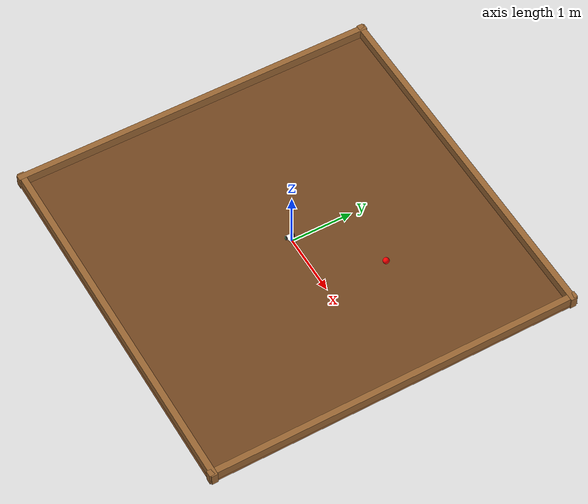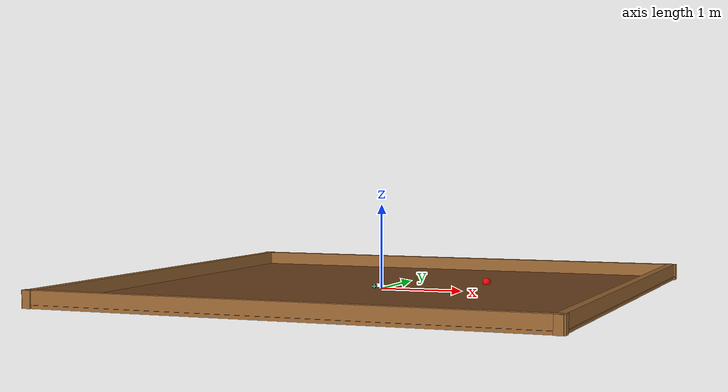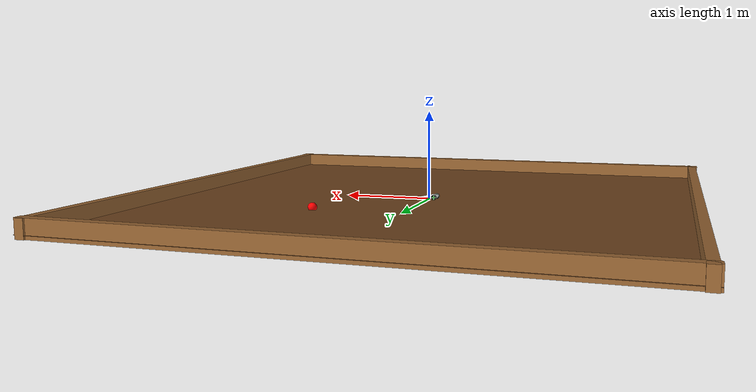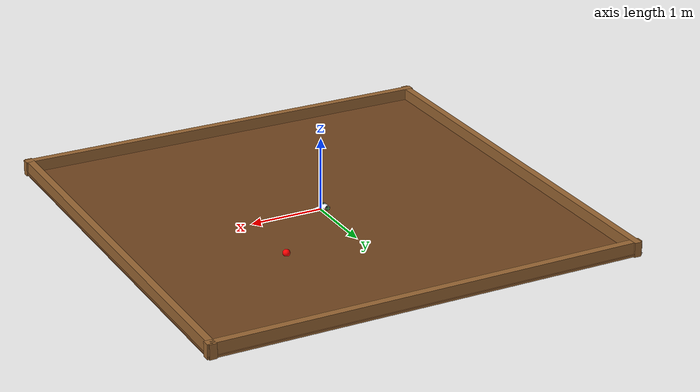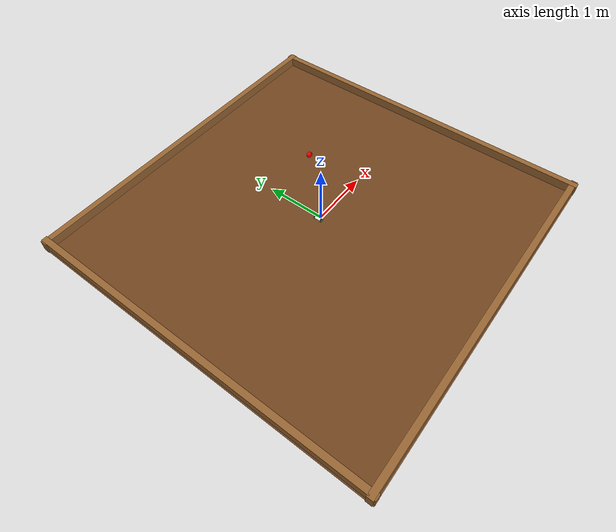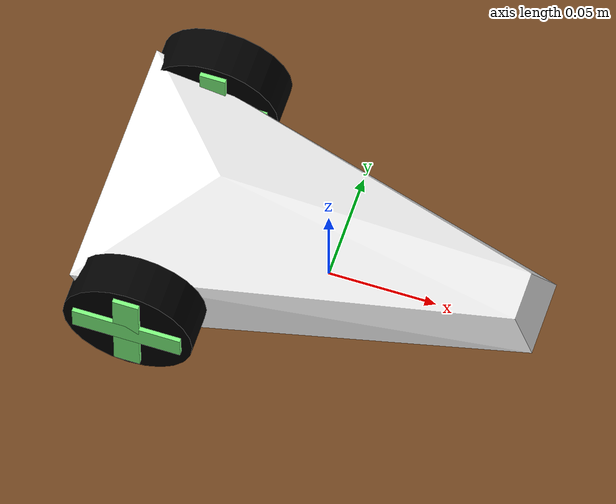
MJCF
<mujoco>
  <compiler autolimits="true"/>

  <asset>
    <texture name="grid" type="2d" builtin="checker" width="512" height="512" rgb1=".1 .2 .3" rgb2=".2 .3 .4"/>
    <material name="grid" texture="grid" texrepeat="1 1" texuniform="true" reflectance=".2"/>

    <material name="wooden" rgba="0.6 0.4 0.2 1" shininess="0.6" specular="0.2" reflectance="0.5"/>

    <texture name="chess" type="2d" builtin="checker" width="512" height="512" rgb1="0.3 0.15 0.05" rgb2="0.6 0.4 0.2"/>
    <material name="chessboard" texture="chess" texrepeat="1 1" texuniform="true" reflectance=".2"/>

    <material name="red_car_material" rgba="1 1 1 1" shininess="0.6" specular="0.2" reflectance="0.5"/>

    <mesh name="chasis" scale=".01 .006 .0015"
      vertex=" 9   2   0
              -10  10  10
               9  -2   0
               10  3  -10
               10 -3  -10
              -8   10 -10
              -10 -10  10
              -8  -10 -10
              -5   0   20"/>
  </asset>

  <default>
    <joint damping=".03" actuatorfrcrange="-0.5 0.5"/>
    <default class="wheel">
      <geom type="cylinder" size=".03 .01" rgba="0 0 0 1"/>
    </default>
    <default class="decor">
      <site type="box" rgba=".5 1 .5 1"/>
    </default>
  </default>

  <worldbody>
    <geom type="plane" size="3 3 .01" material="chessboard"/>
    <light name="global_light" pos="0 0 10" diffuse="0.5 0.5 0.5"/>
    <body name="car" pos="0 0 .03">
      <freejoint/>
      <light name="top light" pos="0 0 2" mode="trackcom" diffuse=".4 .4 .4"/>

      <geom name="chasis" type="mesh" mesh="chasis" material="red_car_material"/>
      <geom name="front wheel" pos=".08 0 -.015" type="sphere" size=".015" condim="1" priority="1"/>

      <light name="front light" pos=".1 0 .02" dir="2 0 -1" diffuse="1 1 1"/>
      <body name="left wheel" pos="-.07 .06 0" zaxis="0 1 0">
        <joint name="left"/>
        <geom class="wheel"/>
        <site class="decor" size=".006 .025 .012"/>
        <site class="decor" size=".025 .006 .012"/>
      </body>
      <body name="right wheel" pos="-.07 -.06 0" zaxis="0 1 0">
        <joint name="right"/>
        <geom class="wheel"/>
        <site class="decor" size=".006 .025 .012"/>
        <site class="decor" size=".025 .006 .012"/>
      </body>
    </body>

    <geom type="box" size="3 0.05 0.1" pos="0 2.93 0.05" material="wooden"/> <!-- Top wall -->
    <geom type="box" size="3 0.05 0.1" pos="0 -2.93 0.05" material="wooden"/> <!-- Bottom wall -->
    <geom type="box" size="0.05 3 0.1" pos="2.93 0 0.05" material="wooden"/> <!-- Right wall -->
    <geom type="box" size="0.05 3 0.1" pos="-2.93 0 0.05" material="wooden"/> <!-- Left wall -->

    <geom name="goal" pos="1.0 1.0 0.02" type="sphere" size="0.05" rgba="1 0 0 1" group="0" solref="0.001 1" solimp="0.01 0.99"/>

  </worldbody>

  <tendon>
    <fixed name="forward">
      <joint joint="left" coef=".5"/>
      <joint joint="right" coef=".5"/>
    </fixed>
    <fixed name="turn">
      <joint joint="left" coef="-.5"/>
      <joint joint="right" coef=".5"/>
    </fixed>
  </tendon>

  <actuator>
    <motor name="forward" tendon="forward" ctrlrange="-1 1"/>
    <motor name="turn" tendon="turn" ctrlrange="-1 1"/>
  </actuator>

  <sensor>
    <jointactuatorfrc name="right" joint="right"/>
    <jointactuatorfrc name="left" joint="left"/>
  </sensor>
</mujoco>
